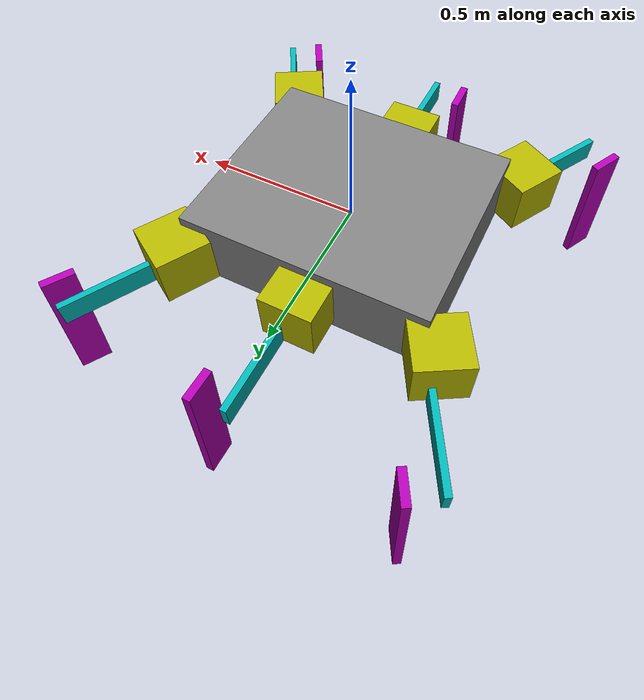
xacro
<?xml version="1.0"?>
<robot xmlns:xacro="http://ros.org/wiki/xacro" name="crab">
	<!-- Properties -->

	<xacro:property name="norm" value="20" />

	<xacro:property name="base_width" value="${13/norm}" />
	<xacro:property name="base_length" value="${15.5/norm}" />
	<xacro:property name="base_height" value="${4.5/norm}" />

	<!-- Define macros for inertia  -->
	<xacro:macro name="box_inertia" params="m w h d">
		<inertial>
			<origin xyz="0 0 0" rpy="${pi/2} 0 ${pi/2}" />
			<mass value="${m}" />
			<inertia ixx="${(m/12) * (h*h + d*d)}" ixy="0.0" ixz="0.0" iyy="${(m/12) * (w*w + d*d)}"
				iyz="0.0" izz="${(m/12) * (w*w + h*h)}" />
		</inertial>
	</xacro:macro>

	<xacro:macro name="cylinder_inertia" params="m r h">
		<inertial>
			<origin xyz="0 0 0" rpy="${pi/2} 0 0" />
			<mass value="${m}" />
			<inertia ixx="${(m/12) * (3*r*r + h*h)}" ixy="0" ixz="0" iyy="${(m/12) * (3*r*r + h*h)}"
				iyz="0" izz="${(m/2) * (r*r)}" />
		</inertial>
	</xacro:macro>

	<xacro:macro name="sphere_inertia" params="m r">
		<inertial>
			<mass value="${m}" />
			<inertia ixx="${(2/5) * m * (r*r)}" ixy="0.0" ixz="0.0" iyy="${(2/5) * m * (r*r)}"
				iyz="0.0" izz="${(2/5) * m * (r*r)}" />
		</inertial>
	</xacro:macro>

	<!-- Build the body frame -->
	<link name="base_link">
		<collision>
			<geometry>
				<box size="${base_length} ${base_width} ${base_height}" />
			</geometry>
		</collision>

		<xacro:box_inertia m="15" w="${base_width}" d="${base_length}" h="${base_height}" />
	</link>

	<!-- Robot Footprint -->

	<joint name="base_joint" type="fixed">
		<parent link="base_link" />
		<child link="thorax" />
		<origin xyz="0 0 0" rpy="0 0 0" />
	</joint>

	<link name="thorax">
		<visual>
			<origin xyz="0 0 0" rpy="0 0 0" />
			<geometry>
				<box size="${15.5/20} ${13/20} ${4.5/20}" />
			</geometry>
			<material name="grey">
				<color rgba="0.5 0.5 0.5 1" />
			</material>
		</visual>
		<collision>
			<origin xyz="0 0 0" rpy="0 0 0" />
			<geometry>
				<box size="${15.5/20} ${13/20} ${4.5/20}" />
			</geometry>
			<material name="grey">
				<color rgba="0.5 0.5 0.5 1" />
			</material>
		</collision>

		<xacro:box_inertia m="1" w="${13/norm}" d="${4.5/norm}" h="${15.5/norm}" />
	</link>

	<!-- Pi parameter -->
	<xacro:property name="pi" value="3.1415926535897931" />

	<!-- Joint properties -->
	<xacro:property name="joint_lower_limit" value="-${1.5}" />
	<xacro:property name="joint_upper_limit" value="${1.5}" />
	<xacro:property name="joint_effort" value="10000" />
	<xacro:property name="joint_velocity" value="100" />

	<!-- Leg macros -->
	<xacro:macro name="leg" params="side num x y angle">

		<!-- Build leg -->
		<!-- joint to center of thorax -->
		<joint name="leg_center_joint_${side}${num}" type="fixed">
			<origin xyz="${x} ${y} 0" rpy="0 0 0" />
			<parent link="thorax" />
			<child link="leg_center_${side}${num}" />
		</joint>

		<link name="leg_center_${side}${num}" >
			<xacro:box_inertia m="1" w="${2/norm}" d="${9/norm}" h="${0.5/norm}" />
		</link>

		<joint name="coxa_joint_${side}${num}" type="revolute">
			<origin xyz="0 0 0" rpy="0 0 ${angle}" />
			<parent link="leg_center_${side}${num}" />
			<child link="coxa_${side}${num}" />
			<axis xyz="0 0 -1" />
			<limit lower="${joint_lower_limit}" upper="${joint_upper_limit}"
				effort="${joint_effort}" velocity="${joint_velocity}" />
		</joint>

		<link name="coxa_${side}${num}">
			<visual>
				<xacro:if value="${side == 'l'}">
				<origin xyz="${0.8/norm} ${0.5/norm} 0" rpy="0 0 0" />
			</xacro:if>
			<xacro:if value="${side == 'r'}">
				<origin xyz="${0.8/norm} -${0.5/norm} 0" rpy="0 0 0" />
			</xacro:if>
				<geometry>
					<box size="${3.3/norm} ${3.3/norm} ${3.3/norm}" />
				</geometry>
				<material name="">
					<color rgba="0.7 0.7 0 1" />
				</material>
			</visual>
			<collision>
				<xacro:if value="${side == 'l'}">
				<origin xyz="${0.8/norm} ${0.5/norm} 0" rpy="0 0 0" />
			</xacro:if>
			<xacro:if value="${side == 'r'}">
				<origin xyz="${0.8/norm} -${0.5/norm} 0" rpy="0 0 0" />
			</xacro:if>
				<geometry>
					<box size="${3.3/norm} ${3.3/norm} ${3.3/norm}" />
				</geometry>
				<material name="">
					<color rgba="0.7 0.7 0 1" />
				</material>
			</collision>
			<xacro:box_inertia m="1" w="${3.3/norm}" d="${3.3/norm}" h="${3.3/norm}" />
		</link>

		<joint name="femur_joint_${side}${num}" type="revolute">
			<origin xyz="${1/norm} 0 -${1/norm}" rpy="-${pi/2} 0 0" />
			<parent link="coxa_${side}${num}" />
			<child link="femur_${side}${num}" />
			<axis xyz="0 0 -1" />
			<limit lower="${joint_lower_limit}" upper="${joint_upper_limit}"
				effort="${joint_effort}" velocity="${joint_velocity}" />
		</joint>

		<link name="femur_${side}${num}">
			<visual>
				<origin xyz="${(7/2)/norm} 0 0" rpy="0 0 0" />
				<geometry>
					<box size="${7/norm} ${1.5/norm} ${0.4/norm}" />
				</geometry>
				<material name="">
					<color rgba="0 0.7 0.7 1" />
				</material>
			</visual>
			<collision>
				<origin xyz="${(7/2)/norm} 0 0" rpy="0 0 0" />
				<geometry>
					<box size="${7/norm} ${1.5/norm} ${0.4/norm}" />
				</geometry>
				<material name="">
					<color rgba="0 0.7 0.7 1" />
				</material>
			</collision>
			<xacro:box_inertia m="1" w="${1.5/norm}" d="${7/norm}" h="${0.4/norm}" />
		</link>

		<joint name="tibia_joint_${side}${num}" type="revolute">
			<origin xyz="${((7-0.4)/norm)} 0 0" rpy="${pi} 0 ${pi/2}" />
			<parent link="femur_${side}${num}" />
			<child link="tibia_${side}${num}" />
			<axis xyz="0 0 1" />
			<limit lower="${joint_lower_limit}" upper="${joint_upper_limit}"
				effort="${joint_effort}" velocity="${joint_velocity}" />
		</joint>

		<link name="tibia_${side}${num}">
			<visual>
				<origin xyz="${((9-1.4)/2)/norm} 0 ${2/norm}" rpy="0 0 0.06" />
				<geometry>
					<box size="${9/norm} ${2/norm} ${0.5/norm}" />
				</geometry>
				<material name="">
					<color rgba="0.7 0 0.7 1" />
				</material>
			</visual>
			<collision>
				<origin xyz="${((9-1.4)/2)/norm} 0 ${2/norm}" rpy="0 0 0.06" />
				<geometry>
					<box size="${9/norm} ${2/norm} ${0.5/norm}" />
				</geometry>
				<material name="">
					<color rgba="0.7 0 0.7 1" />
				</material>
			</collision>
			<!-- TODO CHECK INERTIA ORDER!!!! -->
			<xacro:box_inertia m="1" w="${2/norm}" d="${9/norm}" h="${0.5/norm}" />
		</link>

		<joint name="tibia_foot_joint_${side}${num}" type="fixed">
			<origin xyz="0.117 0 0" rpy="0 0 0" />
			<parent link="tibia_${side}${num}" />
			<child link="tibia_foot_${side}${num}" />
		</joint>

		<link name="tibia_foot_${side}${num}" />
	</xacro:macro>

	<xacro:property name="x_far_offset" value="${(15.5/2)/norm}" />
	<xacro:property name="y_far_offset" value="${(13/2)/norm}" />

	<!-- Build robot model -->
	<xacro:leg side="r" num="1" x="${x_far_offset}" y="-${y_far_offset}" angle="-${pi/3}" />
	<xacro:leg side="r" num="2" x="0" y="-${y_far_offset}" angle="-${pi/2}" />
	<xacro:leg side="r" num="3" x="-${x_far_offset}" y="-${y_far_offset}" angle="-${pi*2/3}" />
	<xacro:leg side="l" num="1" x="${x_far_offset}" y="${y_far_offset}" angle="${pi/3}" />
	<xacro:leg side="l" num="2" x="0" y="${y_far_offset}" angle="${pi/2}" />
	<xacro:leg side="l" num="3" x="-${x_far_offset}" y="${y_far_offset}" angle="${pi*2/3}" />

</robot>
